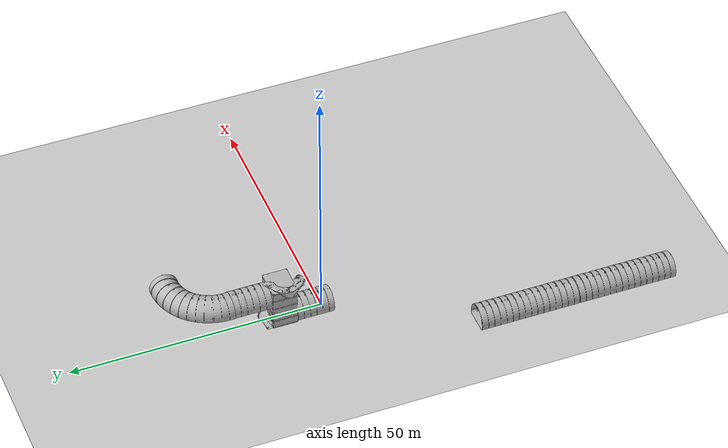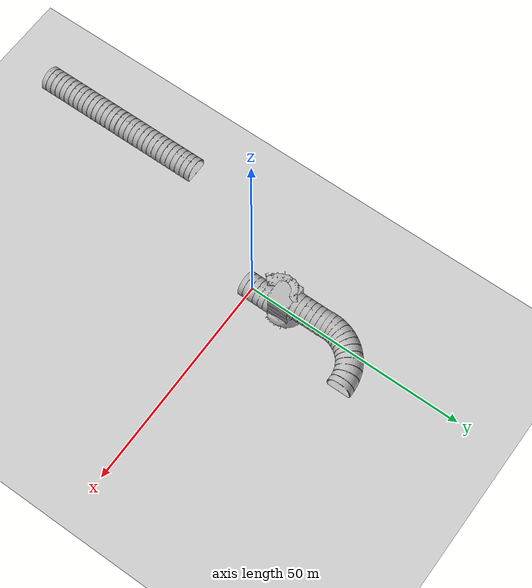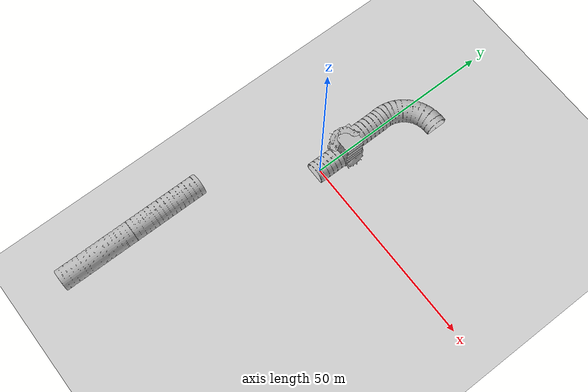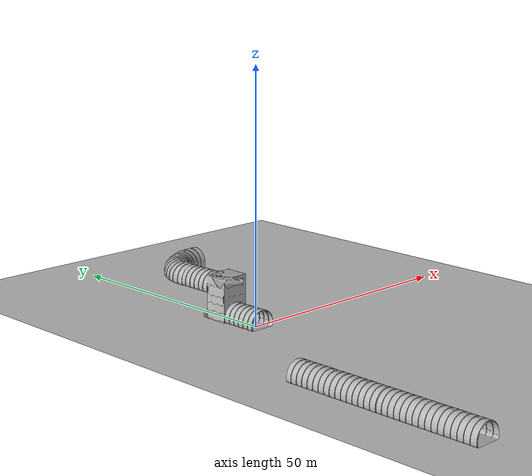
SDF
<sdf version="1.6">
 <world name="default">
  <light name="sun" type="directional">
   <pose>0 0 10 0 -0 0</pose>
   <diffuse>0.8 0.8 0.8 1</diffuse>
   <specular>0.1 0.1 0.1 1</specular>
   <attenuation>
    <range>1000</range>
    <constant>0.9</constant>
    <linear>0.01</linear>
    <quadratic>0.001</quadratic>
   </attenuation>
   <direction>-0.5 0.5 -1</direction>
  </light>
  <model name="ground_plane">
   <static>1</static>
   <link name="link">
    <collision name="collision">
     <geometry><plane><normal>0 0 1</normal><size>160 100</size></plane></geometry>
     <surface><friction><ode><mu>100</mu><mu2>50</mu2></ode></friction></surface>
    </collision>
    <visual name="visual">
     <cast_shadows>0</cast_shadows>
     <geometry><plane><normal>0 0 1</normal><size>100 150</size></plane></geometry>
     <material>
      <script><uri>file://media/materials/scripts/gazebo.material</uri><name>Gazebo/Grey</name></script>
     </material>
    </visual>
   </link>
  </model>
  <gravity>0 0 -9.8</gravity>
  <magnetic_field>6e-06 2.3e-05 -4.2e-05</magnetic_field>
  <atmosphere type="adiabatic"/>
  <physics name="default_physics" default="0" type="ode">
   <max_step_size>0.0013</max_step_size>
   <real_time_factor>1</real_time_factor>
   <real_time_update_rate>1000</real_time_update_rate>
  </physics>
  <scene><ambient>0.4 0.4 0.4 1</ambient><background>0.7 0.7 0.7 1</background><shadows>1</shadows></scene>
  <spherical_coordinates>
   <surface_model>EARTH_WGS84</surface_model>
   <latitude_deg>0</latitude_deg>
   <longitude_deg>0</longitude_deg>
   <elevation>0</elevation>
   <heading_deg>0</heading_deg>
  </spherical_coordinates>
  <model name="tunnel_tile_7">
   <static>1</static>
   <link name="link">
    <collision name="collision">
     <geometry><mesh><uri>model://tunnel_tile_7/meshes/tunnel_tile_7.dae</uri></mesh></geometry>
    </collision>
    <collision name="collision_ground_1">
     <pose>0 6.14028 5 0 -0 0</pose>
     <geometry><box><size>6.19538 7.71943 0.001</size></box></geometry>
    </collision>
    <collision name="collision_ground_2">
     <pose>0 2.28057 2.5 0 -0 0</pose>
     <geometry><box><size>6.19538 0.001 5</size></box></geometry>
    </collision>
    <collision name="collision_ground_3">
     <pose>0 -3.8572 0 0 -0 0</pose>
     <geometry><box><size>6.19538 12.2806 0.001</size></box></geometry>
    </collision>
    <collision name="collision_ground_4">
     <pose>0 -2.42079 6.38525 0 -0 0</pose>
     <geometry><box><size>6.19538 0.001 5.69769</size></box></geometry>
    </collision>
    <collision name="collision_ground_5">
     <pose>-2.83306 0.079873 4.58439 0 -0 0</pose>
     <geometry><box><size>0.001 5.1333 9.16878</size></box></geometry>
    </collision>
    <collision name="collision_ground_6">
     <pose>2.83306 0.079873 4.58439 0 -0 0</pose>
     <geometry><box><size>0.001 5.1333 9.16878</size></box></geometry>
    </collision>
    <collision name="collision_ground_7">
     <pose>0 0.079873 8.72854 0 -0 0</pose>
     <geometry><box><size>6.95991 5.1333 0.001</size></box></geometry>
    </collision>
    <visual name="visual">
     <geometry><mesh><uri>model://tunnel_tile_7/meshes/tunnel_tile_7.dae</uri></mesh></geometry>
    </visual>
   </link>
   <pose>0.074435 8.26638 0 0 -0 0</pose>
  </model>
  <model name="tunnel_tile_2">
   <static>1</static>
   <link name="link">
    <collision name="collision">
     <geometry><mesh><uri>model://tunnel_tile_2/meshes/tunnel_tile_2.dae</uri></mesh></geometry>
    </collision>
    <collision name="collision_ground">
     <pose>3.5 -3.5 0 0 -0 0</pose>
     <geometry><box><size>13 13 0.001</size></box></geometry>
    </collision>
    <visual name="visual">
     <geometry><mesh><uri>model://tunnel_tile_2/meshes/tunnel_tile_2.dae</uri></mesh></geometry>
    </visual>
   </link>
   <pose>-0.011688 27.9718 4.97571 0 -0 0</pose>
  </model>
  <model name="tunnel_elevation">
   <static>1</static>
   <link name="link">
    <collision name="collision">
     <geometry>
      <mesh><scale>0.01 0.01 0.01</scale><uri>model://tunnel_elevation/meshes/Tunnel_Elevation.obj</uri></mesh>
     </geometry>
    </collision>
    <visual name="visual">
     <geometry>
      <mesh><scale>0.01 0.01 0.01</scale><uri>model://tunnel_elevation/meshes/Tunnel_Elevation.obj</uri></mesh>
     </geometry>
    </visual>
   </link>
   <pose>9.76055 28.0106 5.00035 0 0 -1.60303</pose>
  </model>
  <model name="cave_90deg">
   <static>1</static>
   <link name="base">
    <collision name="base_collision">
     <geometry><mesh><uri>model://cave_90deg/meshes/cave_90deg_collider.dae</uri></mesh></geometry>
    </collision>
    <visual name="base_visual">
     <cast_shadows>0</cast_shadows>
     <geometry><mesh><uri>model://cave_90deg/meshes/cave_90deg.dae</uri></mesh></geometry>
    </visual>
   </link>
   <pose>-2.88858 7.71 8.94265 3.09817 0.069103 -0.904808</pose>
  </model>
  <model name="tunnel_bend_right">
   <static>1</static>
   <link name="link">
    <collision name="collision">
     <geometry>
      <mesh><scale>0.01 0.01 0.01</scale><uri>model://tunnel_bend_right/meshes/Tunnel_Bend_S_Right.obj</uri></mesh>
     </geometry>
    </collision>
    <visual name="visual">
     <geometry>
      <mesh><scale>0.01 0.01 0.01</scale><uri>model://tunnel_bend_right/meshes/Tunnel_Bend_S_Right.obj</uri></mesh>
     </geometry>
    </visual>
   </link>
   <pose>-14.9386 -25.609 0 0 -0 0</pose>
  </model>
  <model name="cave_90deg_0">
   <static>1</static>
   <link name="base">
    <collision name="base_collision">
     <geometry><mesh><uri>model://cave_90deg/meshes/cave_90deg_collider.dae</uri></mesh></geometry>
    </collision>
    <visual name="base_visual">
     <cast_shadows>0</cast_shadows>
     <geometry><mesh><uri>model://cave_90deg/meshes/cave_90deg.dae</uri></mesh></geometry>
    </visual>
   </link>
   <pose>2.35937 11.1716 0 0 0 -1.52933</pose>
  </model>
  <model name="tunnel_tile_5">
   <static>1</static>
   <link name="link">
    <collision name="collision">
     <geometry><mesh><uri>model://tunnel_tile_5/meshes/tunnel_tile_5.dae</uri></mesh></geometry>
    </collision>
    <collision name="collision_ground">
     <pose>3.5 -3.5 0 0 -0 0</pose>
     <geometry><box><size>13 13 0.001</size></box></geometry>
    </collision>
    <visual name="visual">
     <geometry><mesh><uri>model://tunnel_tile_5/meshes/tunnel_tile_5.dae</uri></mesh></geometry>
    </visual>
   </link>
   <pose>-14.941128 -35.468933 0 0 -0 0</pose>
  </model>
  <model name="tunnel_tile_5b">
   <static>1</static>
   <link name="link">
    <collision name="collision">
     <geometry><mesh><uri>model://tunnel_tile_5/meshes/tunnel_tile_5.dae</uri></mesh></geometry>
    </collision>
    <collision name="collision_ground">
     <pose>3.5 -3.5 0 0 -0 0</pose>
     <geometry><box><size>13 13 0.001</size></box></geometry>
    </collision>
    <visual name="visual">
     <geometry><mesh><uri>model://tunnel_tile_5/meshes/tunnel_tile_5.dae</uri></mesh></geometry>
    </visual>
   </link>
   <pose>-14.941128 -55.468933 0 0 -0 0</pose>
  </model>
 </world>
</sdf>
